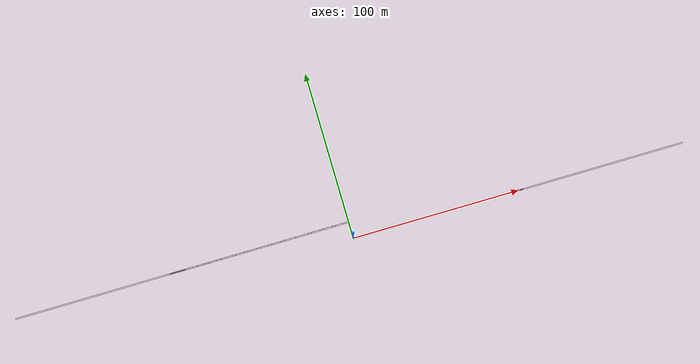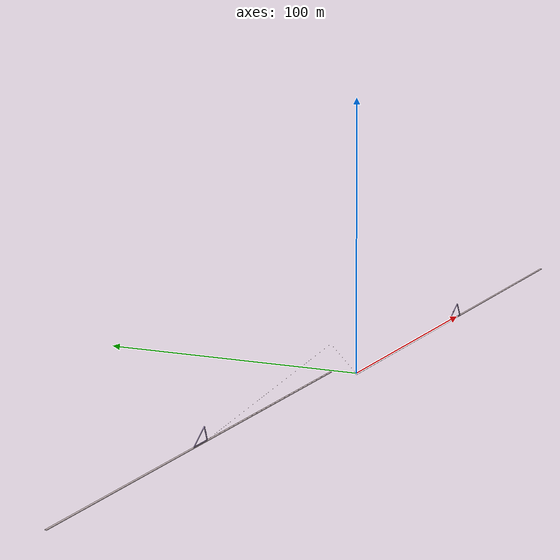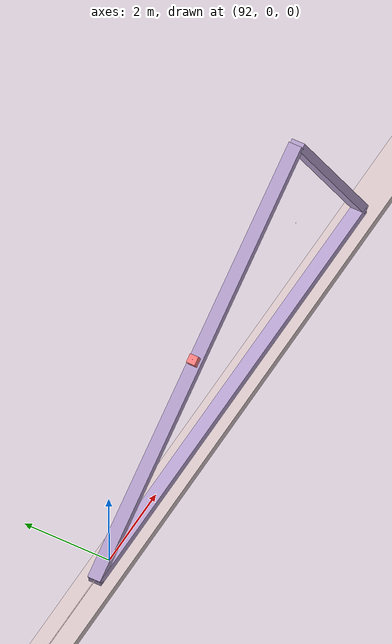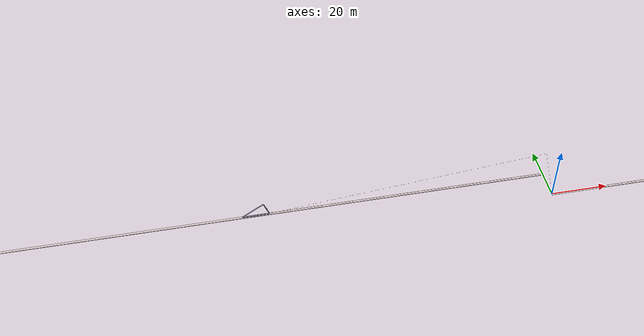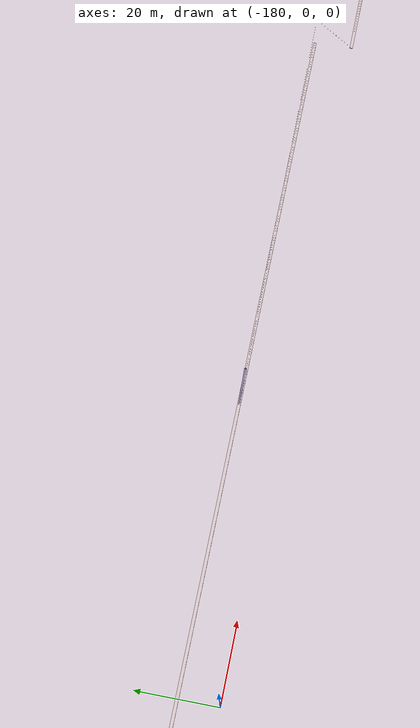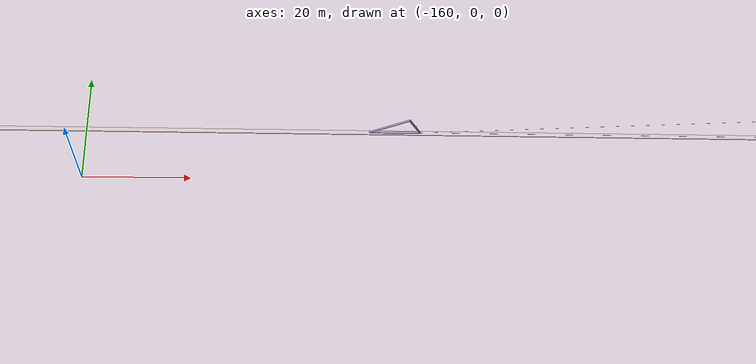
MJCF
<mujoco>
            <compiler angle="radian" autolimits="true" />
            <compiler meshdir="asset" texturedir="asset" assetdir="asset" />
            <option gravity="0 0 -9.81" />
            <default class="main">
            <geom friction="0 0 0" solimp="0.9 1 0.001 0.01 20" solref="0.02 1" condim="1" />
        </default>

        <visual>
            <headlight diffuse="0.7 0.7 0.7" ambient="0.5 0.5 0.5" />
            <global offwidth="1920" offheight="1080" />
        </visual>

        <asset>
            <texture type="skybox" builtin="gradient" rgb1="0 0.5 0.7" rgb2="0 0 0" width="512" height="512" />
            <texture type="2d" name="checks1" builtin="checker" rgb1="1 1 1" rgb2="0 0 0" width="256" height="256" />
            <material name="test_color" texture="checks1" texuniform="true" texrepeat="2 2" />
            <material name="reflectance" reflectance=".4" />
            <texture name="grid" type="2d" builtin="checker" width="512" height="512" rgb1="1.0 0.6235 0.1098" rgb2="1.0 0.749 0.4118" />
            <texture name="white-texture-background" type="2d" file="/home/aryansatpathy/DevStuff/cmu/PHO/sim/geom_sources/fixed_sources/rocket/rocket.white-texture-background.png" content_type="image/png" />
            <material name="pulley" texture="grid" texrepeat="2 2" texuniform="true" />

        </asset>
        <worldbody><body name="massprismplaneentity_0.mass" pos="95.6198729810778 0.0 2.673205080756887" quat="0.9659258262890683 0.0 -0.25881904510252074 0.0">
<geom name="massprismplaneentity_0.mass.geom" type="box" pos="0 0 0" size="0.1 0.1 0.1" rgba="1.0 0.5 0.5 1.0" mass="2.8" quat="0 0 0 1" condim="1" contype="1" conaffinity="1" />
<site name="massprismplaneentity_0.mass.top-1" pos="0.0 0 0.1" quat="0.9659258262890683 -0.0 0.25881904510252074 -0.0" />
<site name="massprismplaneentity_0.mass.sensor" pos="0 0 0" quat="0.9659258262890683 -0.0 0.25881904510252074 -0.0" />
<site name="massprismplaneentity_0.mass.center" pos="0 0 0" quat="0.9659258262890683 -0.0 0.25881904510252074 -0.0" />
<site name="massprismplaneentity_0.mass.left" pos="-0.1 0 0" quat="0.9659258262890683 -0.0 0.25881904510252074 -0.0" />
<site name="massprismplaneentity_0.mass.right" pos="0.1 0 0" quat="0.9659258262890683 -0.0 0.25881904510252074 -0.0" />
<site name="massprismplaneentity_0.mass.bottom" pos="0 0 -0.1" quat="0.9659258262890683 -0.0 0.25881904510252074 -0.0" />
<joint name="massprismplaneentity_0.mass.joint" type="free" axis="1 1 1" pos="0 0 0" />
</body>
<body name="massprismplaneentity_0.prism" pos="100.05 0.0 4.999999999999999" quat="1.0 0.0 0.0 0.0"><geom name="massprismplaneentity_0.prism.geom_bottom" type="box" pos="-2.886751345948129 0.0 -5.0" size="5.773502691896258 0.15 0.1" rgba="0.70588235 0.62352941 0.8 1" mass="1.1333333333333333" quat="1 0 0 0" condim="1" contype="1" conaffinity="1" />
<geom name="massprismplaneentity_0.prism.geom_left" type="box" pos="-4.330127018922194 0.0 -2.5" size="5.0 0.15 0.1" rgba="0.70588235 0.62352941 0.8 1" mass="1.1333333333333333" quat="0.9659258262890683 0.0 -0.25881904510252074 0.0" condim="1" contype="1" conaffinity="1" />
<geom name="massprismplaneentity_0.prism.geom_right" type="box" pos="1.4433756729740648 0.0 -2.5" size="2.886751345948129 0.15 0.1" rgba="0.70588235 0.62352941 0.8 1" mass="1.1333333333333333" quat="0.8660254037844387 0.0 0.49999999999999994 0.0" condim="1" contype="1" conaffinity="1" />
<site name="massprismplaneentity_0.prism.sensor" pos="0 0 -2.5" quat="1.0 -0.0 -0.0 -0.0" />
<site name="massprismplaneentity_0.prism.left" pos="-8.660254037844387 0 -5" quat="1.0 -0.0 -0.0 -0.0" />
<site name="massprismplaneentity_0.prism.right" pos="2.8867513459481295 0 -5" quat="1.0 -0.0 -0.0 -0.0" />
<site name="massprismplaneentity_0.prism.top" pos="0 0 0" quat="1.0 -0.0 -0.0 -0.0" />
<joint name="massprismplaneentity_0.prism.joint" type="free" axis="1 1 1" pos="0 0 0" />
</body>
<body name="massprismplaneentity_0.plane" pos="100.05 0.0 -0.2" quat="1.0 0.0 0.0 0.0"><geom name="massprismplaneentity_0.plane.geom" type="box" pos="0 0 0" size="100 0.4 0.1" material="reflectance" rgba="0.82745098 0.75686275 0.76470588 1" mass="1.0" quat="0 0 0 1" condim="1" contype="1" conaffinity="1" />
<site name="massprismplaneentity_0.plane.sensor" pos="0 0 0" quat="1.0 -0.0 -0.0 -0.0" />
<site name="massprismplaneentity_0.plane.left" pos="-100.05 0 0.2" quat="1.0 -0.0 -0.0 -0.0" />
<site name="massprismplaneentity_0.plane.right" pos="100.05 0 0.2" quat="1.0 -0.0 -0.0 -0.0" />
<site name="massprismplaneentity_0.plane.additional_site-0" pos="-100.05 0.0 0.25" quat="1.0 -0.0 -0.0 -0.0" />
</body>
<body name="masswithfixedpulley_1.fixed_pulley" pos="0.0 10.0 10.0" quat="1.0 0.0 0.0 0.0"><site name="masswithfixedpulley_1.fixed_pulley.site" pos="0 0 0.0" quat="1.0 -0.0 -0.0 -0.0" />
</body>
<body name="masswithfixedpulley_1.mass_prism_plane.mass" pos="-98.91093870291732 10.0 2.321184523277831" quat="0.8233840587445079 0.0 0.5674845300141852 0.0">
<geom name="masswithfixedpulley_1.mass_prism_plane.mass.geom" type="box" pos="0 0 0" size="0.1 0.1 0.1" rgba="0.5 0.5 1.0 1.0" mass="16.51" quat="0 0 0 1" condim="1" contype="1" conaffinity="1" />
<site name="masswithfixedpulley_1.mass_prism_plane.mass.top-1" pos="0.0 0 0.1" quat="0.8233840587445079 -0.0 -0.5674845300141852 -0.0" />
<site name="masswithfixedpulley_1.mass_prism_plane.mass.sensor" pos="0 0 0" quat="0.8233840587445079 -0.0 -0.5674845300141852 -0.0" />
<site name="masswithfixedpulley_1.mass_prism_plane.mass.center" pos="0 0 0" quat="0.8233840587445079 -0.0 -0.5674845300141852 -0.0" />
<site name="masswithfixedpulley_1.mass_prism_plane.mass.left" pos="-0.1 0 0" quat="0.8233840587445079 -0.0 -0.5674845300141852 -0.0" />
<site name="masswithfixedpulley_1.mass_prism_plane.mass.right" pos="0.1 0 0" quat="0.8233840587445079 -0.0 -0.5674845300141852 -0.0" />
<site name="masswithfixedpulley_1.mass_prism_plane.mass.bottom" pos="0 0 -0.1" quat="0.8233840587445079 -0.0 -0.5674845300141852 -0.0" />
<joint name="masswithfixedpulley_1.mass_prism_plane.mass.joint" type="free" axis="1 1 1" pos="0 0 0" />
</body>
<body name="masswithfixedpulley_1.mass_prism_plane.prism" pos="-100.05 10.0 4.749999999999999" quat="1.0 0.0 0.0 0.0"><geom name="masswithfixedpulley_1.mass_prism_plane.prism.geom_bottom" type="box" pos="-2.7936004480866448 0.0 -5.0" size="4.69791686977376 0.15 0.1" rgba="0.70588235 0.62352941 0.8 1" mass="0.4666666666666666" quat="1 0 0 0" condim="1" contype="1" conaffinity="1" />
<geom name="masswithfixedpulley_1.mass_prism_plane.prism.geom_left" type="box" pos="-3.7457586589302023 0.0 -2.5" size="4.503410699786395 0.15 0.1" rgba="0.70588235 0.62352941 0.8 1" mass="0.4666666666666666" quat="0.9570162992883053 0.0 -0.2900341409153701 0.0" condim="1" contype="1" conaffinity="1" />
<geom name="masswithfixedpulley_1.mass_prism_plane.prism.geom_right" type="box" pos="0.9521582108435573 0.0 -2.5" size="2.675183219608856 0.15 0.1" rgba="0.70588235 0.62352941 0.8 1" mass="0.4666666666666666" quat="0.8233840587445079 0.0 0.5674845300141852 0.0" condim="1" contype="1" conaffinity="1" />
<site name="masswithfixedpulley_1.mass_prism_plane.prism.sensor" pos="0 0 -2.5" quat="1.0 -0.0 -0.0 -0.0" />
<site name="masswithfixedpulley_1.mass_prism_plane.prism.left" pos="-7.491517317860405 0 -5" quat="1.0 -0.0 -0.0 -0.0" />
<site name="masswithfixedpulley_1.mass_prism_plane.prism.right" pos="1.9043164216871147 0 -5" quat="1.0 -0.0 -0.0 -0.0" />
<site name="masswithfixedpulley_1.mass_prism_plane.prism.top" pos="0 0 0" quat="1.0 -0.0 -0.0 -0.0" />
<joint name="masswithfixedpulley_1.mass_prism_plane.prism.joint" type="free" axis="1 1 1" pos="0 0 0" />
</body>
<body name="masswithfixedpulley_1.mass_prism_plane.plane" pos="-100.05 10.0 -0.45" quat="1.0 0.0 0.0 0.0"><geom name="masswithfixedpulley_1.mass_prism_plane.plane.geom" type="box" pos="0 0 0" size="100 0.4 0.1" material="reflectance" rgba="0.82745098 0.75686275 0.76470588 1" mass="1.0" quat="0 0 0 1" condim="1" contype="1" conaffinity="1" />
<site name="masswithfixedpulley_1.mass_prism_plane.plane.sensor" pos="0 0 0" quat="1.0 -0.0 -0.0 -0.0" />
<site name="masswithfixedpulley_1.mass_prism_plane.plane.left" pos="-100.05 0 0.2" quat="1.0 -0.0 -0.0 -0.0" />
<site name="masswithfixedpulley_1.mass_prism_plane.plane.right" pos="100.05 0 0.2" quat="1.0 -0.0 -0.0 -0.0" />
<site name="masswithfixedpulley_1.mass_prism_plane.plane.additional_site-0" pos="100.05 0.0 0.25" quat="1.0 -0.0 -0.0 -0.0" />
</body>

</worldbody><tendon>
<spatial name="spatial_0" width="0.01" rgba="0.9686 0.8392 0.8784 1" range="0 302.42172365155574" limited="true" solimplimit="0.99 1 0.001 0.01 20" solreflimit="0.02 1">
<site site="massprismplaneentity_0.prism.left" />
<site site="massprismplaneentity_0.plane.left" />
<site site="massprismplaneentity_0.plane.additional_site-0" />
<site site="masswithfixedpulley_1.fixed_pulley.site" />
<site site="masswithfixedpulley_1.mass_prism_plane.prism.right" />
<site site="masswithfixedpulley_1.mass_prism_plane.plane.right" />
<site site="masswithfixedpulley_1.mass_prism_plane.plane.additional_site-0" />
</spatial>
</tendon>

        <sensor>

        </sensor>
        <custom>

        </custom>
        <contact>

        </contact>
        <actuator>

        </actuator>
    </mujoco>
